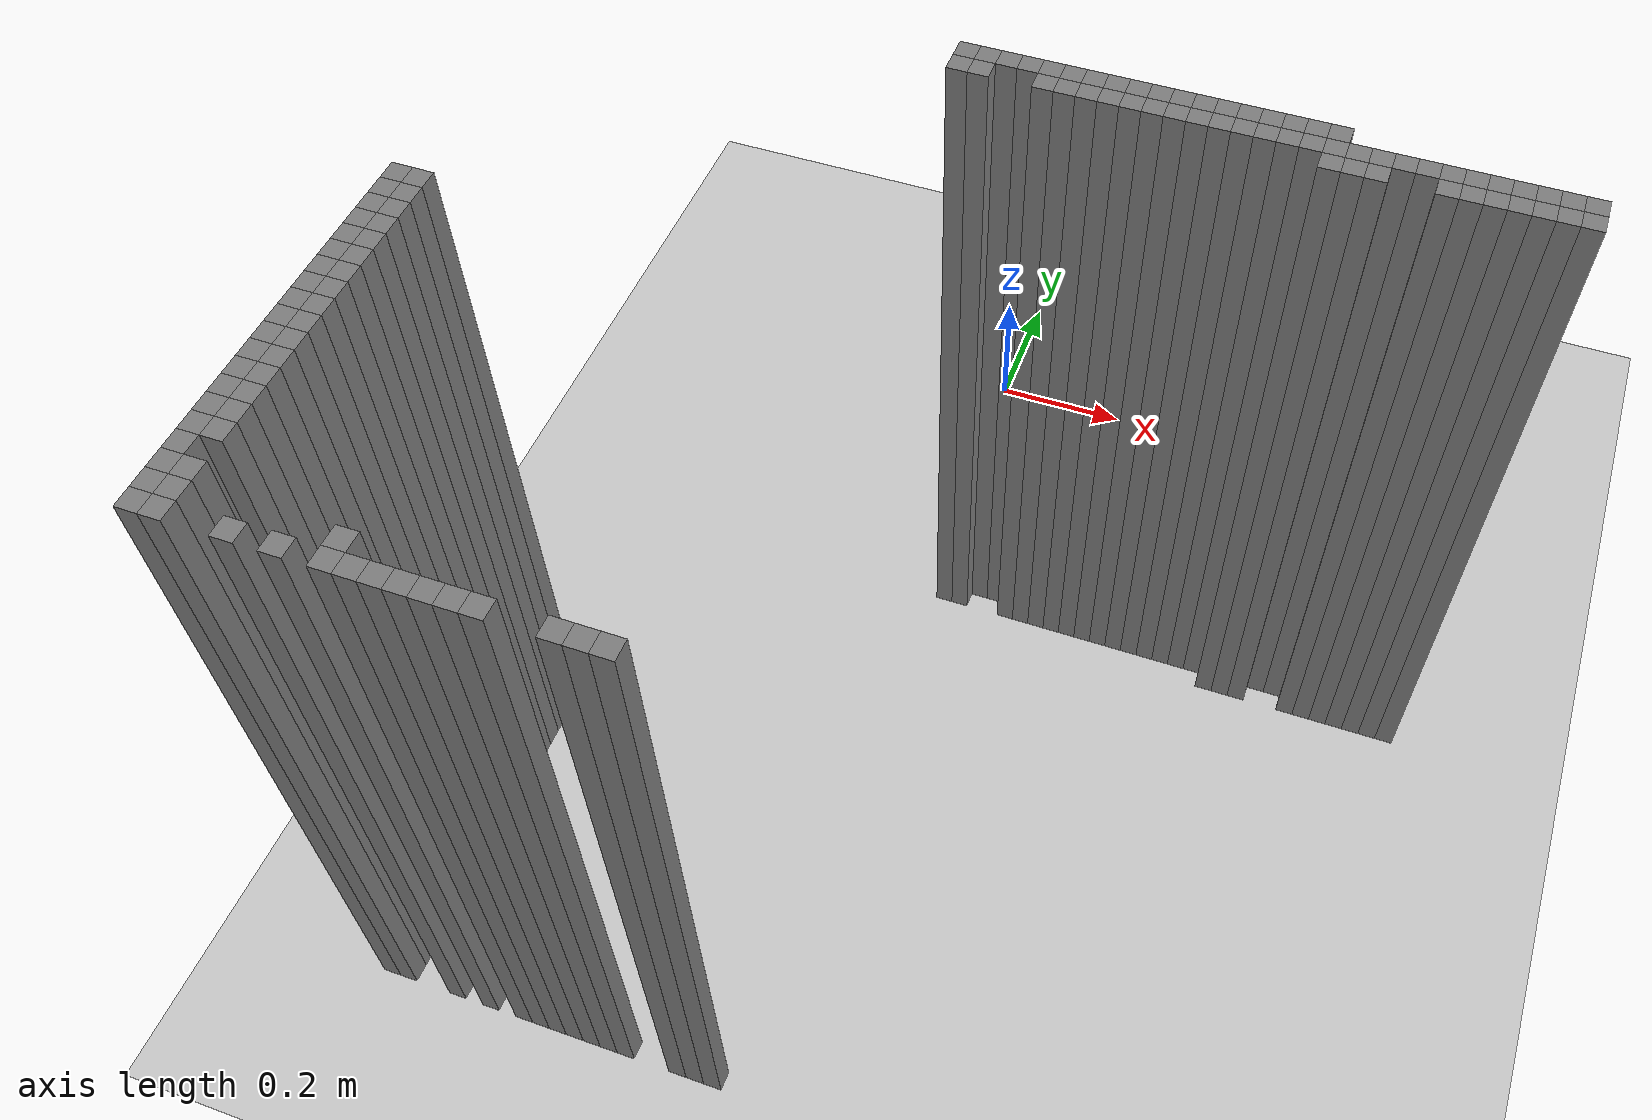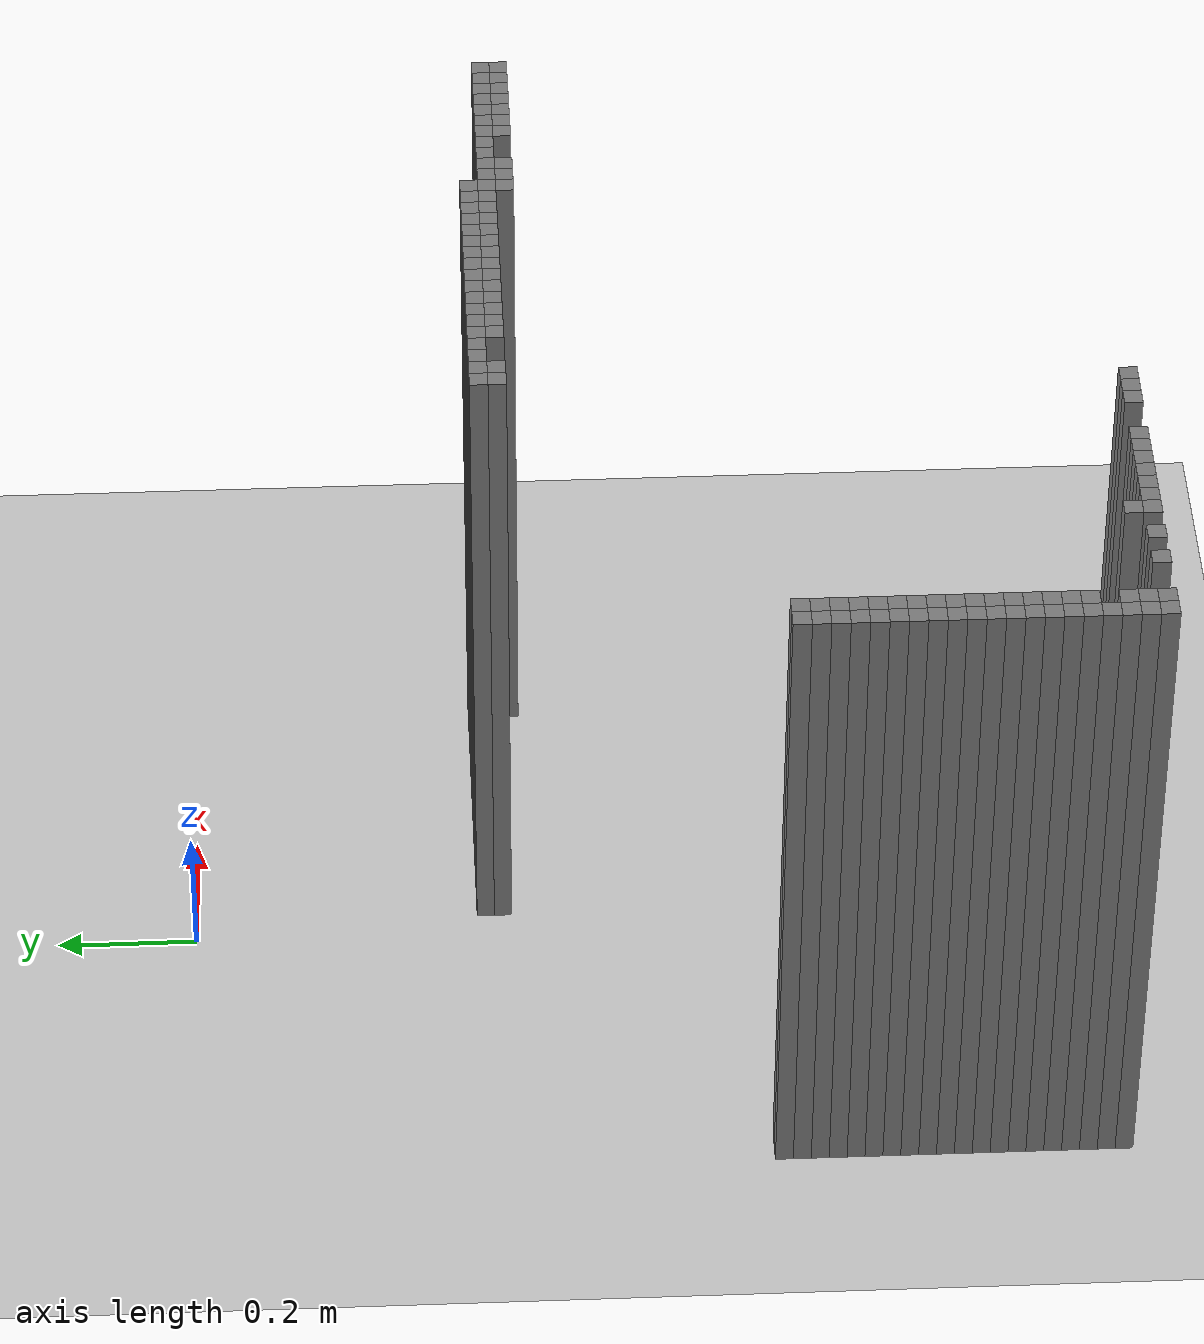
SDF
<sdf version="1.6">
 <world name="map_world">
  <include><uri>model://ground_plane</uri></include>
  <include><uri>model://sun</uri></include>
  <model name="obs_95_66">
   <static>true</static>
   <link name="link">
    <collision name="collision"><geometry><box><size>0.025 0.025 1.0</size></box></geometry></collision>
    <visual name="visual">
     <geometry><box><size>0.025 0.025 1.0</size></box></geometry>
     <material><ambient>0.5 0.5 0.5 1</ambient></material>
    </visual>
   </link>
   <pose>0.04876499999999995 -0.41907099999999975 0.5 0 0 0</pose>
  </model>
  <model name="obs_96_66">
   <static>true</static>
   <link name="link">
    <collision name="collision"><geometry><box><size>0.025 0.025 1.0</size></box></geometry></collision>
    <visual name="visual">
     <geometry><box><size>0.025 0.025 1.0</size></box></geometry>
     <material><ambient>0.5 0.5 0.5 1</ambient></material>
    </visual>
   </link>
   <pose>0.0737650000000003 -0.41907099999999975 0.5 0 0 0</pose>
  </model>
  <model name="obs_97_66">
   <static>true</static>
   <link name="link">
    <collision name="collision"><geometry><box><size>0.025 0.025 1.0</size></box></geometry></collision>
    <visual name="visual">
     <geometry><box><size>0.025 0.025 1.0</size></box></geometry>
     <material><ambient>0.5 0.5 0.5 1</ambient></material>
    </visual>
   </link>
   <pose>0.09876500000000021 -0.41907099999999975 0.5 0 0 0</pose>
  </model>
  <model name="obs_98_66">
   <static>true</static>
   <link name="link">
    <collision name="collision"><geometry><box><size>0.025 0.025 1.0</size></box></geometry></collision>
    <visual name="visual">
     <geometry><box><size>0.025 0.025 1.0</size></box></geometry>
     <material><ambient>0.5 0.5 0.5 1</ambient></material>
    </visual>
   </link>
   <pose>0.12376500000000012 -0.41907099999999975 0.5 0 0 0</pose>
  </model>
  <model name="obs_99_66">
   <static>true</static>
   <link name="link">
    <collision name="collision"><geometry><box><size>0.025 0.025 1.0</size></box></geometry></collision>
    <visual name="visual">
     <geometry><box><size>0.025 0.025 1.0</size></box></geometry>
     <material><ambient>0.5 0.5 0.5 1</ambient></material>
    </visual>
   </link>
   <pose>0.14876500000000004 -0.41907099999999975 0.5 0 0 0</pose>
  </model>
  <model name="obs_100_66">
   <static>true</static>
   <link name="link">
    <collision name="collision"><geometry><box><size>0.025 0.025 1.0</size></box></geometry></collision>
    <visual name="visual">
     <geometry><box><size>0.025 0.025 1.0</size></box></geometry>
     <material><ambient>0.5 0.5 0.5 1</ambient></material>
    </visual>
   </link>
   <pose>0.17376499999999995 -0.41907099999999975 0.5 0 0 0</pose>
  </model>
  <model name="obs_101_66">
   <static>true</static>
   <link name="link">
    <collision name="collision"><geometry><box><size>0.025 0.025 1.0</size></box></geometry></collision>
    <visual name="visual">
     <geometry><box><size>0.025 0.025 1.0</size></box></geometry>
     <material><ambient>0.5 0.5 0.5 1</ambient></material>
    </visual>
   </link>
   <pose>0.1987650000000003 -0.41907099999999975 0.5 0 0 0</pose>
  </model>
  <model name="obs_102_66">
   <static>true</static>
   <link name="link">
    <collision name="collision"><geometry><box><size>0.025 0.025 1.0</size></box></geometry></collision>
    <visual name="visual">
     <geometry><box><size>0.025 0.025 1.0</size></box></geometry>
     <material><ambient>0.5 0.5 0.5 1</ambient></material>
    </visual>
   </link>
   <pose>0.2237650000000002 -0.41907099999999975 0.5 0 0 0</pose>
  </model>
  <model name="obs_103_66">
   <static>true</static>
   <link name="link">
    <collision name="collision"><geometry><box><size>0.025 0.025 1.0</size></box></geometry></collision>
    <visual name="visual">
     <geometry><box><size>0.025 0.025 1.0</size></box></geometry>
     <material><ambient>0.5 0.5 0.5 1</ambient></material>
    </visual>
   </link>
   <pose>0.24876500000000012 -0.41907099999999975 0.5 0 0 0</pose>
  </model>
  <model name="obs_104_66">
   <static>true</static>
   <link name="link">
    <collision name="collision"><geometry><box><size>0.025 0.025 1.0</size></box></geometry></collision>
    <visual name="visual">
     <geometry><box><size>0.025 0.025 1.0</size></box></geometry>
     <material><ambient>0.5 0.5 0.5 1</ambient></material>
    </visual>
   </link>
   <pose>0.27376500000000004 -0.41907099999999975 0.5 0 0 0</pose>
  </model>
  <model name="obs_105_66">
   <static>true</static>
   <link name="link">
    <collision name="collision"><geometry><box><size>0.025 0.025 1.0</size></box></geometry></collision>
    <visual name="visual">
     <geometry><box><size>0.025 0.025 1.0</size></box></geometry>
     <material><ambient>0.5 0.5 0.5 1</ambient></material>
    </visual>
   </link>
   <pose>0.29876499999999995 -0.41907099999999975 0.5 0 0 0</pose>
  </model>
  <model name="obs_106_66">
   <static>true</static>
   <link name="link">
    <collision name="collision"><geometry><box><size>0.025 0.025 1.0</size></box></geometry></collision>
    <visual name="visual">
     <geometry><box><size>0.025 0.025 1.0</size></box></geometry>
     <material><ambient>0.5 0.5 0.5 1</ambient></material>
    </visual>
   </link>
   <pose>0.3237650000000003 -0.41907099999999975 0.5 0 0 0</pose>
  </model>
  <model name="obs_107_66">
   <static>true</static>
   <link name="link">
    <collision name="collision"><geometry><box><size>0.025 0.025 1.0</size></box></geometry></collision>
    <visual name="visual">
     <geometry><box><size>0.025 0.025 1.0</size></box></geometry>
     <material><ambient>0.5 0.5 0.5 1</ambient></material>
    </visual>
   </link>
   <pose>0.3487650000000002 -0.41907099999999975 0.5 0 0 0</pose>
  </model>
  <model name="obs_108_66">
   <static>true</static>
   <link name="link">
    <collision name="collision"><geometry><box><size>0.025 0.025 1.0</size></box></geometry></collision>
    <visual name="visual">
     <geometry><box><size>0.025 0.025 1.0</size></box></geometry>
     <material><ambient>0.5 0.5 0.5 1</ambient></material>
    </visual>
   </link>
   <pose>0.3737650000000001 -0.41907099999999975 0.5 0 0 0</pose>
  </model>
  <model name="obs_109_66">
   <static>true</static>
   <link name="link">
    <collision name="collision"><geometry><box><size>0.025 0.025 1.0</size></box></geometry></collision>
    <visual name="visual">
     <geometry><box><size>0.025 0.025 1.0</size></box></geometry>
     <material><ambient>0.5 0.5 0.5 1</ambient></material>
    </visual>
   </link>
   <pose>0.39876500000000004 -0.41907099999999975 0.5 0 0 0</pose>
  </model>
  <model name="obs_110_66">
   <static>true</static>
   <link name="link">
    <collision name="collision"><geometry><box><size>0.025 0.025 1.0</size></box></geometry></collision>
    <visual name="visual">
     <geometry><box><size>0.025 0.025 1.0</size></box></geometry>
     <material><ambient>0.5 0.5 0.5 1</ambient></material>
    </visual>
   </link>
   <pose>0.42376499999999995 -0.41907099999999975 0.5 0 0 0</pose>
  </model>
  <model name="obs_111_66">
   <static>true</static>
   <link name="link">
    <collision name="collision"><geometry><box><size>0.025 0.025 1.0</size></box></geometry></collision>
    <visual name="visual">
     <geometry><box><size>0.025 0.025 1.0</size></box></geometry>
     <material><ambient>0.5 0.5 0.5 1</ambient></material>
    </visual>
   </link>
   <pose>0.4487650000000003 -0.41907099999999975 0.5 0 0 0</pose>
  </model>
  <model name="obs_112_66">
   <static>true</static>
   <link name="link">
    <collision name="collision"><geometry><box><size>0.025 0.025 1.0</size></box></geometry></collision>
    <visual name="visual">
     <geometry><box><size>0.025 0.025 1.0</size></box></geometry>
     <material><ambient>0.5 0.5 0.5 1</ambient></material>
    </visual>
   </link>
   <pose>0.4737650000000002 -0.41907099999999975 0.5 0 0 0</pose>
  </model>
  <model name="obs_95_67">
   <static>true</static>
   <link name="link">
    <collision name="collision"><geometry><box><size>0.025 0.025 1.0</size></box></geometry></collision>
    <visual name="visual">
     <geometry><box><size>0.025 0.025 1.0</size></box></geometry>
     <material><ambient>0.5 0.5 0.5 1</ambient></material>
    </visual>
   </link>
   <pose>0.04876499999999995 -0.4440709999999999 0.5 0 0 0</pose>
  </model>
  <model name="obs_96_67">
   <static>true</static>
   <link name="link">
    <collision name="collision"><geometry><box><size>0.025 0.025 1.0</size></box></geometry></collision>
    <visual name="visual">
     <geometry><box><size>0.025 0.025 1.0</size></box></geometry>
     <material><ambient>0.5 0.5 0.5 1</ambient></material>
    </visual>
   </link>
   <pose>0.0737650000000003 -0.4440709999999999 0.5 0 0 0</pose>
  </model>
  <model name="obs_99_67">
   <static>true</static>
   <link name="link">
    <collision name="collision"><geometry><box><size>0.025 0.025 1.0</size></box></geometry></collision>
    <visual name="visual">
     <geometry><box><size>0.025 0.025 1.0</size></box></geometry>
     <material><ambient>0.5 0.5 0.5 1</ambient></material>
    </visual>
   </link>
   <pose>0.14876500000000004 -0.4440709999999999 0.5 0 0 0</pose>
  </model>
  <model name="obs_100_67">
   <static>true</static>
   <link name="link">
    <collision name="collision"><geometry><box><size>0.025 0.025 1.0</size></box></geometry></collision>
    <visual name="visual">
     <geometry><box><size>0.025 0.025 1.0</size></box></geometry>
     <material><ambient>0.5 0.5 0.5 1</ambient></material>
    </visual>
   </link>
   <pose>0.17376499999999995 -0.4440709999999999 0.5 0 0 0</pose>
  </model>
  <model name="obs_101_67">
   <static>true</static>
   <link name="link">
    <collision name="collision"><geometry><box><size>0.025 0.025 1.0</size></box></geometry></collision>
    <visual name="visual">
     <geometry><box><size>0.025 0.025 1.0</size></box></geometry>
     <material><ambient>0.5 0.5 0.5 1</ambient></material>
    </visual>
   </link>
   <pose>0.1987650000000003 -0.4440709999999999 0.5 0 0 0</pose>
  </model>
  <model name="obs_102_67">
   <static>true</static>
   <link name="link">
    <collision name="collision"><geometry><box><size>0.025 0.025 1.0</size></box></geometry></collision>
    <visual name="visual">
     <geometry><box><size>0.025 0.025 1.0</size></box></geometry>
     <material><ambient>0.5 0.5 0.5 1</ambient></material>
    </visual>
   </link>
   <pose>0.2237650000000002 -0.4440709999999999 0.5 0 0 0</pose>
  </model>
  <model name="obs_103_67">
   <static>true</static>
   <link name="link">
    <collision name="collision"><geometry><box><size>0.025 0.025 1.0</size></box></geometry></collision>
    <visual name="visual">
     <geometry><box><size>0.025 0.025 1.0</size></box></geometry>
     <material><ambient>0.5 0.5 0.5 1</ambient></material>
    </visual>
   </link>
   <pose>0.24876500000000012 -0.4440709999999999 0.5 0 0 0</pose>
  </model>
  <model name="obs_104_67">
   <static>true</static>
   <link name="link">
    <collision name="collision"><geometry><box><size>0.025 0.025 1.0</size></box></geometry></collision>
    <visual name="visual">
     <geometry><box><size>0.025 0.025 1.0</size></box></geometry>
     <material><ambient>0.5 0.5 0.5 1</ambient></material>
    </visual>
   </link>
   <pose>0.27376500000000004 -0.4440709999999999 0.5 0 0 0</pose>
  </model>
  <model name="obs_105_67">
   <static>true</static>
   <link name="link">
    <collision name="collision"><geometry><box><size>0.025 0.025 1.0</size></box></geometry></collision>
    <visual name="visual">
     <geometry><box><size>0.025 0.025 1.0</size></box></geometry>
     <material><ambient>0.5 0.5 0.5 1</ambient></material>
    </visual>
   </link>
   <pose>0.29876499999999995 -0.4440709999999999 0.5 0 0 0</pose>
  </model>
  <model name="obs_106_67">
   <static>true</static>
   <link name="link">
    <collision name="collision"><geometry><box><size>0.025 0.025 1.0</size></box></geometry></collision>
    <visual name="visual">
     <geometry><box><size>0.025 0.025 1.0</size></box></geometry>
     <material><ambient>0.5 0.5 0.5 1</ambient></material>
    </visual>
   </link>
   <pose>0.3237650000000003 -0.4440709999999999 0.5 0 0 0</pose>
  </model>
  <model name="obs_107_67">
   <static>true</static>
   <link name="link">
    <collision name="collision"><geometry><box><size>0.025 0.025 1.0</size></box></geometry></collision>
    <visual name="visual">
     <geometry><box><size>0.025 0.025 1.0</size></box></geometry>
     <material><ambient>0.5 0.5 0.5 1</ambient></material>
    </visual>
   </link>
   <pose>0.3487650000000002 -0.4440709999999999 0.5 0 0 0</pose>
  </model>
  <model name="obs_108_67">
   <static>true</static>
   <link name="link">
    <collision name="collision"><geometry><box><size>0.025 0.025 1.0</size></box></geometry></collision>
    <visual name="visual">
     <geometry><box><size>0.025 0.025 1.0</size></box></geometry>
     <material><ambient>0.5 0.5 0.5 1</ambient></material>
    </visual>
   </link>
   <pose>0.3737650000000001 -0.4440709999999999 0.5 0 0 0</pose>
  </model>
  <model name="obs_109_67">
   <static>true</static>
   <link name="link">
    <collision name="collision"><geometry><box><size>0.025 0.025 1.0</size></box></geometry></collision>
    <visual name="visual">
     <geometry><box><size>0.025 0.025 1.0</size></box></geometry>
     <material><ambient>0.5 0.5 0.5 1</ambient></material>
    </visual>
   </link>
   <pose>0.39876500000000004 -0.4440709999999999 0.5 0 0 0</pose>
  </model>
  <model name="obs_110_67">
   <static>true</static>
   <link name="link">
    <collision name="collision"><geometry><box><size>0.025 0.025 1.0</size></box></geometry></collision>
    <visual name="visual">
     <geometry><box><size>0.025 0.025 1.0</size></box></geometry>
     <material><ambient>0.5 0.5 0.5 1</ambient></material>
    </visual>
   </link>
   <pose>0.42376499999999995 -0.4440709999999999 0.5 0 0 0</pose>
  </model>
  <model name="obs_111_67">
   <static>true</static>
   <link name="link">
    <collision name="collision"><geometry><box><size>0.025 0.025 1.0</size></box></geometry></collision>
    <visual name="visual">
     <geometry><box><size>0.025 0.025 1.0</size></box></geometry>
     <material><ambient>0.5 0.5 0.5 1</ambient></material>
    </visual>
   </link>
   <pose>0.4487650000000003 -0.4440709999999999 0.5 0 0 0</pose>
  </model>
  <model name="obs_112_67">
   <static>true</static>
   <link name="link">
    <collision name="collision"><geometry><box><size>0.025 0.025 1.0</size></box></geometry></collision>
    <visual name="visual">
     <geometry><box><size>0.025 0.025 1.0</size></box></geometry>
     <material><ambient>0.5 0.5 0.5 1</ambient></material>
    </visual>
   </link>
   <pose>0.4737650000000002 -0.4440709999999999 0.5 0 0 0</pose>
  </model>
  <model name="obs_113_67">
   <static>true</static>
   <link name="link">
    <collision name="collision"><geometry><box><size>0.025 0.025 1.0</size></box></geometry></collision>
    <visual name="visual">
     <geometry><box><size>0.025 0.025 1.0</size></box></geometry>
     <material><ambient>0.5 0.5 0.5 1</ambient></material>
    </visual>
   </link>
   <pose>0.4987650000000001 -0.4440709999999999 0.5 0 0 0</pose>
  </model>
  <model name="obs_114_67">
   <static>true</static>
   <link name="link">
    <collision name="collision"><geometry><box><size>0.025 0.025 1.0</size></box></geometry></collision>
    <visual name="visual">
     <geometry><box><size>0.025 0.025 1.0</size></box></geometry>
     <material><ambient>0.5 0.5 0.5 1</ambient></material>
    </visual>
   </link>
   <pose>0.523765 -0.4440709999999999 0.5 0 0 0</pose>
  </model>
  <model name="obs_115_67">
   <static>true</static>
   <link name="link">
    <collision name="collision"><geometry><box><size>0.025 0.025 1.0</size></box></geometry></collision>
    <visual name="visual">
     <geometry><box><size>0.025 0.025 1.0</size></box></geometry>
     <material><ambient>0.5 0.5 0.5 1</ambient></material>
    </visual>
   </link>
   <pose>0.548765 -0.4440709999999999 0.5 0 0 0</pose>
  </model>
  <model name="obs_116_67">
   <static>true</static>
   <link name="link">
    <collision name="collision"><geometry><box><size>0.025 0.025 1.0</size></box></geometry></collision>
    <visual name="visual">
     <geometry><box><size>0.025 0.025 1.0</size></box></geometry>
     <material><ambient>0.5 0.5 0.5 1</ambient></material>
    </visual>
   </link>
   <pose>0.5737650000000003 -0.4440709999999999 0.5 0 0 0</pose>
  </model>
  <model name="obs_117_67">
   <static>true</static>
   <link name="link">
    <collision name="collision"><geometry><box><size>0.025 0.025 1.0</size></box></geometry></collision>
    <visual name="visual">
     <geometry><box><size>0.025 0.025 1.0</size></box></geometry>
     <material><ambient>0.5 0.5 0.5 1</ambient></material>
    </visual>
   </link>
   <pose>0.5987650000000002 -0.4440709999999999 0.5 0 0 0</pose>
  </model>
  <model name="obs_118_67">
   <static>true</static>
   <link name="link">
    <collision name="collision"><geometry><box><size>0.025 0.025 1.0</size></box></geometry></collision>
    <visual name="visual">
     <geometry><box><size>0.025 0.025 1.0</size></box></geometry>
     <material><ambient>0.5 0.5 0.5 1</ambient></material>
    </visual>
   </link>
   <pose>0.6237650000000001 -0.4440709999999999 0.5 0 0 0</pose>
  </model>
  <model name="obs_119_67">
   <static>true</static>
   <link name="link">
    <collision name="collision"><geometry><box><size>0.025 0.025 1.0</size></box></geometry></collision>
    <visual name="visual">
     <geometry><box><size>0.025 0.025 1.0</size></box></geometry>
     <material><ambient>0.5 0.5 0.5 1</ambient></material>
    </visual>
   </link>
   <pose>0.648765 -0.4440709999999999 0.5 0 0 0</pose>
  </model>
  <model name="obs_120_67">
   <static>true</static>
   <link name="link">
    <collision name="collision"><geometry><box><size>0.025 0.025 1.0</size></box></geometry></collision>
    <visual name="visual">
     <geometry><box><size>0.025 0.025 1.0</size></box></geometry>
     <material><ambient>0.5 0.5 0.5 1</ambient></material>
    </visual>
   </link>
   <pose>0.673765 -0.4440709999999999 0.5 0 0 0</pose>
  </model>
  <model name="obs_121_67">
   <static>true</static>
   <link name="link">
    <collision name="collision"><geometry><box><size>0.025 0.025 1.0</size></box></geometry></collision>
    <visual name="visual">
     <geometry><box><size>0.025 0.025 1.0</size></box></geometry>
     <material><ambient>0.5 0.5 0.5 1</ambient></material>
    </visual>
   </link>
   <pose>0.6987650000000003 -0.4440709999999999 0.5 0 0 0</pose>
  </model>
  <model name="obs_122_67">
   <static>true</static>
   <link name="link">
    <collision name="collision"><geometry><box><size>0.025 0.025 1.0</size></box></geometry></collision>
    <visual name="visual">
     <geometry><box><size>0.025 0.025 1.0</size></box></geometry>
     <material><ambient>0.5 0.5 0.5 1</ambient></material>
    </visual>
   </link>
   <pose>0.7237650000000002 -0.4440709999999999 0.5 0 0 0</pose>
  </model>
  <model name="obs_123_67">
   <static>true</static>
   <link name="link">
    <collision name="collision"><geometry><box><size>0.025 0.025 1.0</size></box></geometry></collision>
    <visual name="visual">
     <geometry><box><size>0.025 0.025 1.0</size></box></geometry>
     <material><ambient>0.5 0.5 0.5 1</ambient></material>
    </visual>
   </link>
   <pose>0.7487650000000001 -0.4440709999999999 0.5 0 0 0</pose>
  </model>
  <model name="obs_112_68">
   <static>true</static>
   <link name="link">
    <collision name="collision"><geometry><box><size>0.025 0.025 1.0</size></box></geometry></collision>
    <visual name="visual">
     <geometry><box><size>0.025 0.025 1.0</size></box></geometry>
     <material><ambient>0.5 0.5 0.5 1</ambient></material>
    </visual>
   </link>
   <pose>0.4737650000000002 -0.4690709999999998 0.5 0 0 0</pose>
  </model>
  <model name="obs_113_68">
   <static>true</static>
   <link name="link">
    <collision name="collision"><geometry><box><size>0.025 0.025 1.0</size></box></geometry></collision>
    <visual name="visual">
     <geometry><box><size>0.025 0.025 1.0</size></box></geometry>
     <material><ambient>0.5 0.5 0.5 1</ambient></material>
    </visual>
   </link>
   <pose>0.4987650000000001 -0.4690709999999998 0.5 0 0 0</pose>
  </model>
  <model name="obs_114_68">
   <static>true</static>
   <link name="link">
    <collision name="collision"><geometry><box><size>0.025 0.025 1.0</size></box></geometry></collision>
    <visual name="visual">
     <geometry><box><size>0.025 0.025 1.0</size></box></geometry>
     <material><ambient>0.5 0.5 0.5 1</ambient></material>
    </visual>
   </link>
   <pose>0.523765 -0.4690709999999998 0.5 0 0 0</pose>
  </model>
  <model name="obs_117_68">
   <static>true</static>
   <link name="link">
    <collision name="collision"><geometry><box><size>0.025 0.025 1.0</size></box></geometry></collision>
    <visual name="visual">
     <geometry><box><size>0.025 0.025 1.0</size></box></geometry>
     <material><ambient>0.5 0.5 0.5 1</ambient></material>
    </visual>
   </link>
   <pose>0.5987650000000002 -0.4690709999999998 0.5 0 0 0</pose>
  </model>
  <model name="obs_118_68">
   <static>true</static>
   <link name="link">
    <collision name="collision"><geometry><box><size>0.025 0.025 1.0</size></box></geometry></collision>
    <visual name="visual">
     <geometry><box><size>0.025 0.025 1.0</size></box></geometry>
     <material><ambient>0.5 0.5 0.5 1</ambient></material>
    </visual>
   </link>
   <pose>0.6237650000000001 -0.4690709999999998 0.5 0 0 0</pose>
  </model>
  <model name="obs_119_68">
   <static>true</static>
   <link name="link">
    <collision name="collision"><geometry><box><size>0.025 0.025 1.0</size></box></geometry></collision>
    <visual name="visual">
     <geometry><box><size>0.025 0.025 1.0</size></box></geometry>
     <material><ambient>0.5 0.5 0.5 1</ambient></material>
    </visual>
   </link>
   <pose>0.648765 -0.4690709999999998 0.5 0 0 0</pose>
  </model>
  <model name="obs_120_68">
   <static>true</static>
   <link name="link">
    <collision name="collision"><geometry><box><size>0.025 0.025 1.0</size></box></geometry></collision>
    <visual name="visual">
     <geometry><box><size>0.025 0.025 1.0</size></box></geometry>
     <material><ambient>0.5 0.5 0.5 1</ambient></material>
    </visual>
   </link>
   <pose>0.673765 -0.4690709999999998 0.5 0 0 0</pose>
  </model>
  <model name="obs_121_68">
   <static>true</static>
   <link name="link">
    <collision name="collision"><geometry><box><size>0.025 0.025 1.0</size></box></geometry></collision>
    <visual name="visual">
     <geometry><box><size>0.025 0.025 1.0</size></box></geometry>
     <material><ambient>0.5 0.5 0.5 1</ambient></material>
    </visual>
   </link>
   <pose>0.6987650000000003 -0.4690709999999998 0.5 0 0 0</pose>
  </model>
  <model name="obs_122_68">
   <static>true</static>
   <link name="link">
    <collision name="collision"><geometry><box><size>0.025 0.025 1.0</size></box></geometry></collision>
    <visual name="visual">
     <geometry><box><size>0.025 0.025 1.0</size></box></geometry>
     <material><ambient>0.5 0.5 0.5 1</ambient></material>
    </visual>
   </link>
   <pose>0.7237650000000002 -0.4690709999999998 0.5 0 0 0</pose>
  </model>
  <model name="obs_123_68">
   <static>true</static>
   <link name="link">
    <collision name="collision"><geometry><box><size>0.025 0.025 1.0</size></box></geometry></collision>
    <visual name="visual">
     <geometry><box><size>0.025 0.025 1.0</size></box></geometry>
     <material><ambient>0.5 0.5 0.5 1</ambient></material>
    </visual>
   </link>
   <pose>0.7487650000000001 -0.4690709999999998 0.5 0 0 0</pose>
  </model>
  <model name="obs_75_82">
   <static>true</static>
   <link name="link">
    <collision name="collision"><geometry><box><size>0.025 0.025 1.0</size></box></geometry></collision>
    <visual name="visual">
     <geometry><box><size>0.025 0.025 1.0</size></box></geometry>
     <material><ambient>0.5 0.5 0.5 1</ambient></material>
    </visual>
   </link>
   <pose>-0.45123500000000005 -0.8190709999999999 0.5 0 0 0</pose>
  </model>
  <model name="obs_76_82">
   <static>true</static>
   <link name="link">
    <collision name="collision"><geometry><box><size>0.025 0.025 1.0</size></box></geometry></collision>
    <visual name="visual">
     <geometry><box><size>0.025 0.025 1.0</size></box></geometry>
     <material><ambient>0.5 0.5 0.5 1</ambient></material>
    </visual>
   </link>
   <pose>-0.4262349999999999 -0.8190709999999999 0.5 0 0 0</pose>
  </model>
  <model name="obs_75_83">
   <static>true</static>
   <link name="link">
    <collision name="collision"><geometry><box><size>0.025 0.025 1.0</size></box></geometry></collision>
    <visual name="visual">
     <geometry><box><size>0.025 0.025 1.0</size></box></geometry>
     <material><ambient>0.5 0.5 0.5 1</ambient></material>
    </visual>
   </link>
   <pose>-0.45123500000000005 -0.8440709999999998 0.5 0 0 0</pose>
  </model>
  <model name="obs_76_83">
   <static>true</static>
   <link name="link">
    <collision name="collision"><geometry><box><size>0.025 0.025 1.0</size></box></geometry></collision>
    <visual name="visual">
     <geometry><box><size>0.025 0.025 1.0</size></box></geometry>
     <material><ambient>0.5 0.5 0.5 1</ambient></material>
    </visual>
   </link>
   <pose>-0.4262349999999999 -0.8440709999999998 0.5 0 0 0</pose>
  </model>
  <model name="obs_75_84">
   <static>true</static>
   <link name="link">
    <collision name="collision"><geometry><box><size>0.025 0.025 1.0</size></box></geometry></collision>
    <visual name="visual">
     <geometry><box><size>0.025 0.025 1.0</size></box></geometry>
     <material><ambient>0.5 0.5 0.5 1</ambient></material>
    </visual>
   </link>
   <pose>-0.45123500000000005 -0.8690709999999999 0.5 0 0 0</pose>
  </model>
  <model name="obs_76_84">
   <static>true</static>
   <link name="link">
    <collision name="collision"><geometry><box><size>0.025 0.025 1.0</size></box></geometry></collision>
    <visual name="visual">
     <geometry><box><size>0.025 0.025 1.0</size></box></geometry>
     <material><ambient>0.5 0.5 0.5 1</ambient></material>
    </visual>
   </link>
   <pose>-0.4262349999999999 -0.8690709999999999 0.5 0 0 0</pose>
  </model>
  <model name="obs_75_85">
   <static>true</static>
   <link name="link">
    <collision name="collision"><geometry><box><size>0.025 0.025 1.0</size></box></geometry></collision>
    <visual name="visual">
     <geometry><box><size>0.025 0.025 1.0</size></box></geometry>
     <material><ambient>0.5 0.5 0.5 1</ambient></material>
    </visual>
   </link>
   <pose>-0.45123500000000005 -0.8940709999999998 0.5 0 0 0</pose>
  </model>
  <model name="obs_76_85">
   <static>true</static>
   <link name="link">
    <collision name="collision"><geometry><box><size>0.025 0.025 1.0</size></box></geometry></collision>
    <visual name="visual">
     <geometry><box><size>0.025 0.025 1.0</size></box></geometry>
     <material><ambient>0.5 0.5 0.5 1</ambient></material>
    </visual>
   </link>
   <pose>-0.4262349999999999 -0.8940709999999998 0.5 0 0 0</pose>
  </model>
  <model name="obs_75_86">
   <static>true</static>
   <link name="link">
    <collision name="collision"><geometry><box><size>0.025 0.025 1.0</size></box></geometry></collision>
    <visual name="visual">
     <geometry><box><size>0.025 0.025 1.0</size></box></geometry>
     <material><ambient>0.5 0.5 0.5 1</ambient></material>
    </visual>
   </link>
   <pose>-0.45123500000000005 -0.919071 0.5 0 0 0</pose>
  </model>
  <model name="obs_76_86">
   <static>true</static>
   <link name="link">
    <collision name="collision"><geometry><box><size>0.025 0.025 1.0</size></box></geometry></collision>
    <visual name="visual">
     <geometry><box><size>0.025 0.025 1.0</size></box></geometry>
     <material><ambient>0.5 0.5 0.5 1</ambient></material>
    </visual>
   </link>
   <pose>-0.4262349999999999 -0.919071 0.5 0 0 0</pose>
  </model>
  <model name="obs_75_87">
   <static>true</static>
   <link name="link">
    <collision name="collision"><geometry><box><size>0.025 0.025 1.0</size></box></geometry></collision>
    <visual name="visual">
     <geometry><box><size>0.025 0.025 1.0</size></box></geometry>
     <material><ambient>0.5 0.5 0.5 1</ambient></material>
    </visual>
   </link>
   <pose>-0.45123500000000005 -0.9440709999999999 0.5 0 0 0</pose>
  </model>
  <model name="obs_76_87">
   <static>true</static>
   <link name="link">
    <collision name="collision"><geometry><box><size>0.025 0.025 1.0</size></box></geometry></collision>
    <visual name="visual">
     <geometry><box><size>0.025 0.025 1.0</size></box></geometry>
     <material><ambient>0.5 0.5 0.5 1</ambient></material>
    </visual>
   </link>
   <pose>-0.4262349999999999 -0.9440709999999999 0.5 0 0 0</pose>
  </model>
  <model name="obs_75_88">
   <static>true</static>
   <link name="link">
    <collision name="collision"><geometry><box><size>0.025 0.025 1.0</size></box></geometry></collision>
    <visual name="visual">
     <geometry><box><size>0.025 0.025 1.0</size></box></geometry>
     <material><ambient>0.5 0.5 0.5 1</ambient></material>
    </visual>
   </link>
   <pose>-0.45123500000000005 -0.9690709999999998 0.5 0 0 0</pose>
  </model>
  <model name="obs_76_88">
   <static>true</static>
   <link name="link">
    <collision name="collision"><geometry><box><size>0.025 0.025 1.0</size></box></geometry></collision>
    <visual name="visual">
     <geometry><box><size>0.025 0.025 1.0</size></box></geometry>
     <material><ambient>0.5 0.5 0.5 1</ambient></material>
    </visual>
   </link>
   <pose>-0.4262349999999999 -0.9690709999999998 0.5 0 0 0</pose>
  </model>
  <model name="obs_75_89">
   <static>true</static>
   <link name="link">
    <collision name="collision"><geometry><box><size>0.025 0.025 1.0</size></box></geometry></collision>
    <visual name="visual">
     <geometry><box><size>0.025 0.025 1.0</size></box></geometry>
     <material><ambient>0.5 0.5 0.5 1</ambient></material>
    </visual>
   </link>
   <pose>-0.45123500000000005 -0.9940709999999999 0.5 0 0 0</pose>
  </model>
  <model name="obs_76_89">
   <static>true</static>
   <link name="link">
    <collision name="collision"><geometry><box><size>0.025 0.025 1.0</size></box></geometry></collision>
    <visual name="visual">
     <geometry><box><size>0.025 0.025 1.0</size></box></geometry>
     <material><ambient>0.5 0.5 0.5 1</ambient></material>
    </visual>
   </link>
   <pose>-0.4262349999999999 -0.9940709999999999 0.5 0 0 0</pose>
  </model>
  <model name="obs_75_90">
   <static>true</static>
   <link name="link">
    <collision name="collision"><geometry><box><size>0.025 0.025 1.0</size></box></geometry></collision>
    <visual name="visual">
     <geometry><box><size>0.025 0.025 1.0</size></box></geometry>
     <material><ambient>0.5 0.5 0.5 1</ambient></material>
    </visual>
   </link>
   <pose>-0.45123500000000005 -1.0190709999999998 0.5 0 0 0</pose>
  </model>
  <model name="obs_76_90">
   <static>true</static>
   <link name="link">
    <collision name="collision"><geometry><box><size>0.025 0.025 1.0</size></box></geometry></collision>
    <visual name="visual">
     <geometry><box><size>0.025 0.025 1.0</size></box></geometry>
     <material><ambient>0.5 0.5 0.5 1</ambient></material>
    </visual>
   </link>
   <pose>-0.4262349999999999 -1.0190709999999998 0.5 0 0 0</pose>
  </model>
  <model name="obs_75_91">
   <static>true</static>
   <link name="link">
    <collision name="collision"><geometry><box><size>0.025 0.025 1.0</size></box></geometry></collision>
    <visual name="visual">
     <geometry><box><size>0.025 0.025 1.0</size></box></geometry>
     <material><ambient>0.5 0.5 0.5 1</ambient></material>
    </visual>
   </link>
   <pose>-0.45123500000000005 -1.0440709999999997 0.5 0 0 0</pose>
  </model>
  <model name="obs_76_91">
   <static>true</static>
   <link name="link">
    <collision name="collision"><geometry><box><size>0.025 0.025 1.0</size></box></geometry></collision>
    <visual name="visual">
     <geometry><box><size>0.025 0.025 1.0</size></box></geometry>
     <material><ambient>0.5 0.5 0.5 1</ambient></material>
    </visual>
   </link>
   <pose>-0.4262349999999999 -1.0440709999999997 0.5 0 0 0</pose>
  </model>
  <model name="obs_75_92">
   <static>true</static>
   <link name="link">
    <collision name="collision"><geometry><box><size>0.025 0.025 1.0</size></box></geometry></collision>
    <visual name="visual">
     <geometry><box><size>0.025 0.025 1.0</size></box></geometry>
     <material><ambient>0.5 0.5 0.5 1</ambient></material>
    </visual>
   </link>
   <pose>-0.45123500000000005 -1.0690709999999999 0.5 0 0 0</pose>
  </model>
  <model name="obs_76_92">
   <static>true</static>
   <link name="link">
    <collision name="collision"><geometry><box><size>0.025 0.025 1.0</size></box></geometry></collision>
    <visual name="visual">
     <geometry><box><size>0.025 0.025 1.0</size></box></geometry>
     <material><ambient>0.5 0.5 0.5 1</ambient></material>
    </visual>
   </link>
   <pose>-0.4262349999999999 -1.0690709999999999 0.5 0 0 0</pose>
  </model>
  <model name="obs_75_93">
   <static>true</static>
   <link name="link">
    <collision name="collision"><geometry><box><size>0.025 0.025 1.0</size></box></geometry></collision>
    <visual name="visual">
     <geometry><box><size>0.025 0.025 1.0</size></box></geometry>
     <material><ambient>0.5 0.5 0.5 1</ambient></material>
    </visual>
   </link>
   <pose>-0.45123500000000005 -1.094071 0.5 0 0 0</pose>
  </model>
  <model name="obs_76_93">
   <static>true</static>
   <link name="link">
    <collision name="collision"><geometry><box><size>0.025 0.025 1.0</size></box></geometry></collision>
    <visual name="visual">
     <geometry><box><size>0.025 0.025 1.0</size></box></geometry>
     <material><ambient>0.5 0.5 0.5 1</ambient></material>
    </visual>
   </link>
   <pose>-0.4262349999999999 -1.094071 0.5 0 0 0</pose>
  </model>
  <model name="obs_75_94">
   <static>true</static>
   <link name="link">
    <collision name="collision"><geometry><box><size>0.025 0.025 1.0</size></box></geometry></collision>
    <visual name="visual">
     <geometry><box><size>0.025 0.025 1.0</size></box></geometry>
     <material><ambient>0.5 0.5 0.5 1</ambient></material>
    </visual>
   </link>
   <pose>-0.45123500000000005 -1.119071 0.5 0 0 0</pose>
  </model>
  <model name="obs_76_94">
   <static>true</static>
   <link name="link">
    <collision name="collision"><geometry><box><size>0.025 0.025 1.0</size></box></geometry></collision>
    <visual name="visual">
     <geometry><box><size>0.025 0.025 1.0</size></box></geometry>
     <material><ambient>0.5 0.5 0.5 1</ambient></material>
    </visual>
   </link>
   <pose>-0.4262349999999999 -1.119071 0.5 0 0 0</pose>
  </model>
  <model name="obs_75_95">
   <static>true</static>
   <link name="link">
    <collision name="collision"><geometry><box><size>0.025 0.025 1.0</size></box></geometry></collision>
    <visual name="visual">
     <geometry><box><size>0.025 0.025 1.0</size></box></geometry>
     <material><ambient>0.5 0.5 0.5 1</ambient></material>
    </visual>
   </link>
   <pose>-0.45123500000000005 -1.1440709999999998 0.5 0 0 0</pose>
  </model>
  <model name="obs_76_95">
   <static>true</static>
   <link name="link">
    <collision name="collision"><geometry><box><size>0.025 0.025 1.0</size></box></geometry></collision>
    <visual name="visual">
     <geometry><box><size>0.025 0.025 1.0</size></box></geometry>
     <material><ambient>0.5 0.5 0.5 1</ambient></material>
    </visual>
   </link>
   <pose>-0.4262349999999999 -1.1440709999999998 0.5 0 0 0</pose>
  </model>
  <model name="obs_75_96">
   <static>true</static>
   <link name="link">
    <collision name="collision"><geometry><box><size>0.025 0.025 1.0</size></box></geometry></collision>
    <visual name="visual">
     <geometry><box><size>0.025 0.025 1.0</size></box></geometry>
     <material><ambient>0.5 0.5 0.5 1</ambient></material>
    </visual>
   </link>
   <pose>-0.45123500000000005 -1.1690709999999997 0.5 0 0 0</pose>
  </model>
  <model name="obs_76_96">
   <static>true</static>
   <link name="link">
    <collision name="collision"><geometry><box><size>0.025 0.025 1.0</size></box></geometry></collision>
    <visual name="visual">
     <geometry><box><size>0.025 0.025 1.0</size></box></geometry>
     <material><ambient>0.5 0.5 0.5 1</ambient></material>
    </visual>
   </link>
   <pose>-0.4262349999999999 -1.1690709999999997 0.5 0 0 0</pose>
  </model>
  <model name="obs_75_97">
   <static>true</static>
   <link name="link">
    <collision name="collision"><geometry><box><size>0.025 0.025 1.0</size></box></geometry></collision>
    <visual name="visual">
     <geometry><box><size>0.025 0.025 1.0</size></box></geometry>
     <material><ambient>0.5 0.5 0.5 1</ambient></material>
    </visual>
   </link>
   <pose>-0.45123500000000005 -1.1940709999999999 0.5 0 0 0</pose>
  </model>
  <model name="obs_76_97">
   <static>true</static>
   <link name="link">
    <collision name="collision"><geometry><box><size>0.025 0.025 1.0</size></box></geometry></collision>
    <visual name="visual">
     <geometry><box><size>0.025 0.025 1.0</size></box></geometry>
     <material><ambient>0.5 0.5 0.5 1</ambient></material>
    </visual>
   </link>
   <pose>-0.4262349999999999 -1.1940709999999999 0.5 0 0 0</pose>
  </model>
  <model name="obs_75_98">
   <static>true</static>
   <link name="link">
    <collision name="collision"><geometry><box><size>0.025 0.025 1.0</size></box></geometry></collision>
    <visual name="visual">
     <geometry><box><size>0.025 0.025 1.0</size></box></geometry>
     <material><ambient>0.5 0.5 0.5 1</ambient></material>
    </visual>
   </link>
   <pose>-0.45123500000000005 -1.219071 0.5 0 0 0</pose>
  </model>
  <model name="obs_75_99">
   <static>true</static>
   <link name="link">
    <collision name="collision"><geometry><box><size>0.025 0.025 1.0</size></box></geometry></collision>
    <visual name="visual">
     <geometry><box><size>0.025 0.025 1.0</size></box></geometry>
     <material><ambient>0.5 0.5 0.5 1</ambient></material>
    </visual>
   </link>
   <pose>-0.45123500000000005 -1.244071 0.5 0 0 0</pose>
  </model>
  <model name="obs_76_99">
   <static>true</static>
   <link name="link">
    <collision name="collision"><geometry><box><size>0.025 0.025 1.0</size></box></geometry></collision>
    <visual name="visual">
     <geometry><box><size>0.025 0.025 1.0</size></box></geometry>
     <material><ambient>0.5 0.5 0.5 1</ambient></material>
    </visual>
   </link>
   <pose>-0.4262349999999999 -1.244071 0.5 0 0 0</pose>
  </model>
  <model name="obs_75_100">
   <static>true</static>
   <link name="link">
    <collision name="collision"><geometry><box><size>0.025 0.025 1.0</size></box></geometry></collision>
    <visual name="visual">
     <geometry><box><size>0.025 0.025 1.0</size></box></geometry>
     <material><ambient>0.5 0.5 0.5 1</ambient></material>
    </visual>
   </link>
   <pose>-0.45123500000000005 -1.2690709999999998 0.5 0 0 0</pose>
  </model>
  <model name="obs_76_100">
   <static>true</static>
   <link name="link">
    <collision name="collision"><geometry><box><size>0.025 0.025 1.0</size></box></geometry></collision>
    <visual name="visual">
     <geometry><box><size>0.025 0.025 1.0</size></box></geometry>
     <material><ambient>0.5 0.5 0.5 1</ambient></material>
    </visual>
   </link>
   <pose>-0.4262349999999999 -1.2690709999999998 0.5 0 0 0</pose>
  </model>
  <model name="obs_83_100">
   <static>true</static>
   <link name="link">
    <collision name="collision"><geometry><box><size>0.025 0.025 1.0</size></box></geometry></collision>
    <visual name="visual">
     <geometry><box><size>0.025 0.025 1.0</size></box></geometry>
     <material><ambient>0.5 0.5 0.5 1</ambient></material>
    </visual>
   </link>
   <pose>-0.2512349999999999 -1.2690709999999998 0.5 0 0 0</pose>
  </model>
  <model name="obs_75_101">
   <static>true</static>
   <link name="link">
    <collision name="collision"><geometry><box><size>0.025 0.025 1.0</size></box></geometry></collision>
    <visual name="visual">
     <geometry><box><size>0.025 0.025 1.0</size></box></geometry>
     <material><ambient>0.5 0.5 0.5 1</ambient></material>
    </visual>
   </link>
   <pose>-0.45123500000000005 -1.2940709999999997 0.5 0 0 0</pose>
  </model>
  <model name="obs_76_101">
   <static>true</static>
   <link name="link">
    <collision name="collision"><geometry><box><size>0.025 0.025 1.0</size></box></geometry></collision>
    <visual name="visual">
     <geometry><box><size>0.025 0.025 1.0</size></box></geometry>
     <material><ambient>0.5 0.5 0.5 1</ambient></material>
    </visual>
   </link>
   <pose>-0.4262349999999999 -1.2940709999999997 0.5 0 0 0</pose>
  </model>
  <model name="obs_79_101">
   <static>true</static>
   <link name="link">
    <collision name="collision"><geometry><box><size>0.025 0.025 1.0</size></box></geometry></collision>
    <visual name="visual">
     <geometry><box><size>0.025 0.025 1.0</size></box></geometry>
     <material><ambient>0.5 0.5 0.5 1</ambient></material>
    </visual>
   </link>
   <pose>-0.35123499999999996 -1.2940709999999997 0.5 0 0 0</pose>
  </model>
  <model name="obs_81_101">
   <static>true</static>
   <link name="link">
    <collision name="collision"><geometry><box><size>0.025 0.025 1.0</size></box></geometry></collision>
    <visual name="visual">
     <geometry><box><size>0.025 0.025 1.0</size></box></geometry>
     <material><ambient>0.5 0.5 0.5 1</ambient></material>
    </visual>
   </link>
   <pose>-0.30123500000000014 -1.2940709999999997 0.5 0 0 0</pose>
  </model>
  <model name="obs_83_101">
   <static>true</static>
   <link name="link">
    <collision name="collision"><geometry><box><size>0.025 0.025 1.0</size></box></geometry></collision>
    <visual name="visual">
     <geometry><box><size>0.025 0.025 1.0</size></box></geometry>
     <material><ambient>0.5 0.5 0.5 1</ambient></material>
    </visual>
   </link>
   <pose>-0.2512349999999999 -1.2940709999999997 0.5 0 0 0</pose>
  </model>
  <model name="obs_84_101">
   <static>true</static>
   <link name="link">
    <collision name="collision"><geometry><box><size>0.025 0.025 1.0</size></box></geometry></collision>
    <visual name="visual">
     <geometry><box><size>0.025 0.025 1.0</size></box></geometry>
     <material><ambient>0.5 0.5 0.5 1</ambient></material>
    </visual>
   </link>
   <pose>-0.22623499999999996 -1.2940709999999997 0.5 0 0 0</pose>
  </model>
  <model name="obs_85_101">
   <static>true</static>
   <link name="link">
    <collision name="collision"><geometry><box><size>0.025 0.025 1.0</size></box></geometry></collision>
    <visual name="visual">
     <geometry><box><size>0.025 0.025 1.0</size></box></geometry>
     <material><ambient>0.5 0.5 0.5 1</ambient></material>
    </visual>
   </link>
   <pose>-0.20123500000000005 -1.2940709999999997 0.5 0 0 0</pose>
  </model>
  <model name="obs_86_101">
   <static>true</static>
   <link name="link">
    <collision name="collision"><geometry><box><size>0.025 0.025 1.0</size></box></geometry></collision>
    <visual name="visual">
     <geometry><box><size>0.025 0.025 1.0</size></box></geometry>
     <material><ambient>0.5 0.5 0.5 1</ambient></material>
    </visual>
   </link>
   <pose>-0.17623500000000014 -1.2940709999999997 0.5 0 0 0</pose>
  </model>
  <model name="obs_87_101">
   <static>true</static>
   <link name="link">
    <collision name="collision"><geometry><box><size>0.025 0.025 1.0</size></box></geometry></collision>
    <visual name="visual">
     <geometry><box><size>0.025 0.025 1.0</size></box></geometry>
     <material><ambient>0.5 0.5 0.5 1</ambient></material>
    </visual>
   </link>
   <pose>-0.1512349999999998 -1.2940709999999997 0.5 0 0 0</pose>
  </model>
  <model name="obs_88_101">
   <static>true</static>
   <link name="link">
    <collision name="collision"><geometry><box><size>0.025 0.025 1.0</size></box></geometry></collision>
    <visual name="visual">
     <geometry><box><size>0.025 0.025 1.0</size></box></geometry>
     <material><ambient>0.5 0.5 0.5 1</ambient></material>
    </visual>
   </link>
   <pose>-0.12623499999999988 -1.2940709999999997 0.5 0 0 0</pose>
  </model>
  <model name="obs_89_101">
   <static>true</static>
   <link name="link">
    <collision name="collision"><geometry><box><size>0.025 0.025 1.0</size></box></geometry></collision>
    <visual name="visual">
     <geometry><box><size>0.025 0.025 1.0</size></box></geometry>
     <material><ambient>0.5 0.5 0.5 1</ambient></material>
    </visual>
   </link>
   <pose>-0.10123499999999996 -1.2940709999999997 0.5 0 0 0</pose>
  </model>
  <model name="obs_92_101">
   <static>true</static>
   <link name="link">
    <collision name="collision"><geometry><box><size>0.025 0.025 1.0</size></box></geometry></collision>
    <visual name="visual">
     <geometry><box><size>0.025 0.025 1.0</size></box></geometry>
     <material><ambient>0.5 0.5 0.5 1</ambient></material>
    </visual>
   </link>
   <pose>-0.026234999999999786 -1.2940709999999997 0.5 0 0 0</pose>
  </model>
  <model name="obs_93_101">
   <static>true</static>
   <link name="link">
    <collision name="collision"><geometry><box><size>0.025 0.025 1.0</size></box></geometry></collision>
    <visual name="visual">
     <geometry><box><size>0.025 0.025 1.0</size></box></geometry>
     <material><ambient>0.5 0.5 0.5 1</ambient></material>
    </visual>
   </link>
   <pose>-0.001234999999999875 -1.2940709999999997 0.5 0 0 0</pose>
  </model>
  <model name="obs_94_101">
   <static>true</static>
   <link name="link">
    <collision name="collision"><geometry><box><size>0.025 0.025 1.0</size></box></geometry></collision>
    <visual name="visual">
     <geometry><box><size>0.025 0.025 1.0</size></box></geometry>
     <material><ambient>0.5 0.5 0.5 1</ambient></material>
    </visual>
   </link>
   <pose>0.023765000000000036 -1.2940709999999997 0.5 0 0 0</pose>
  </model>
 </world>
</sdf>
